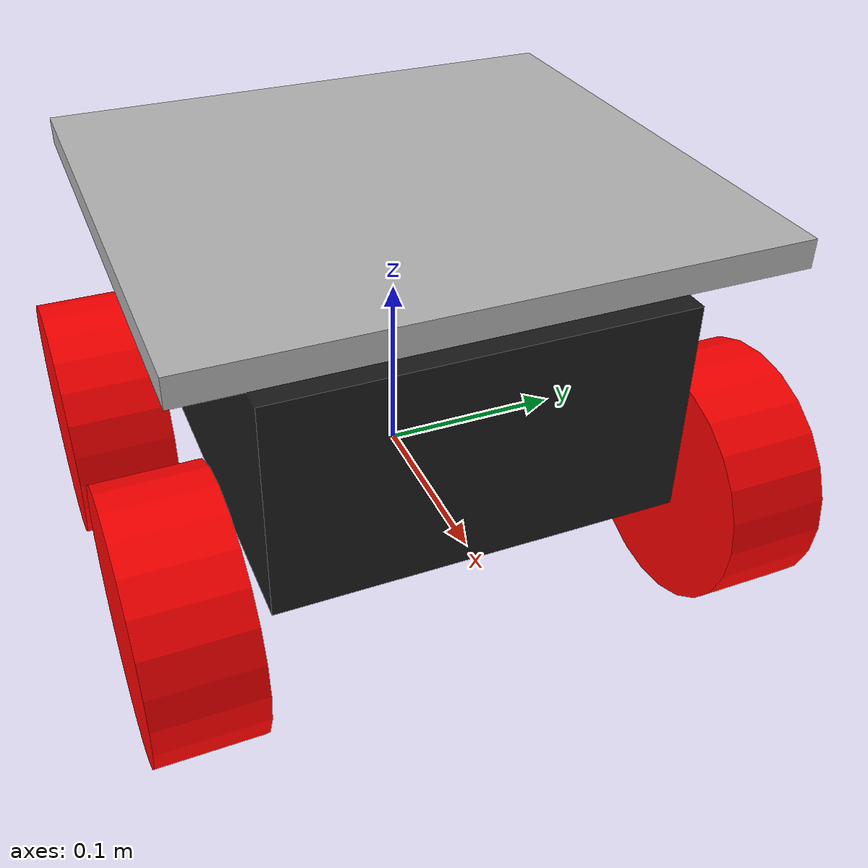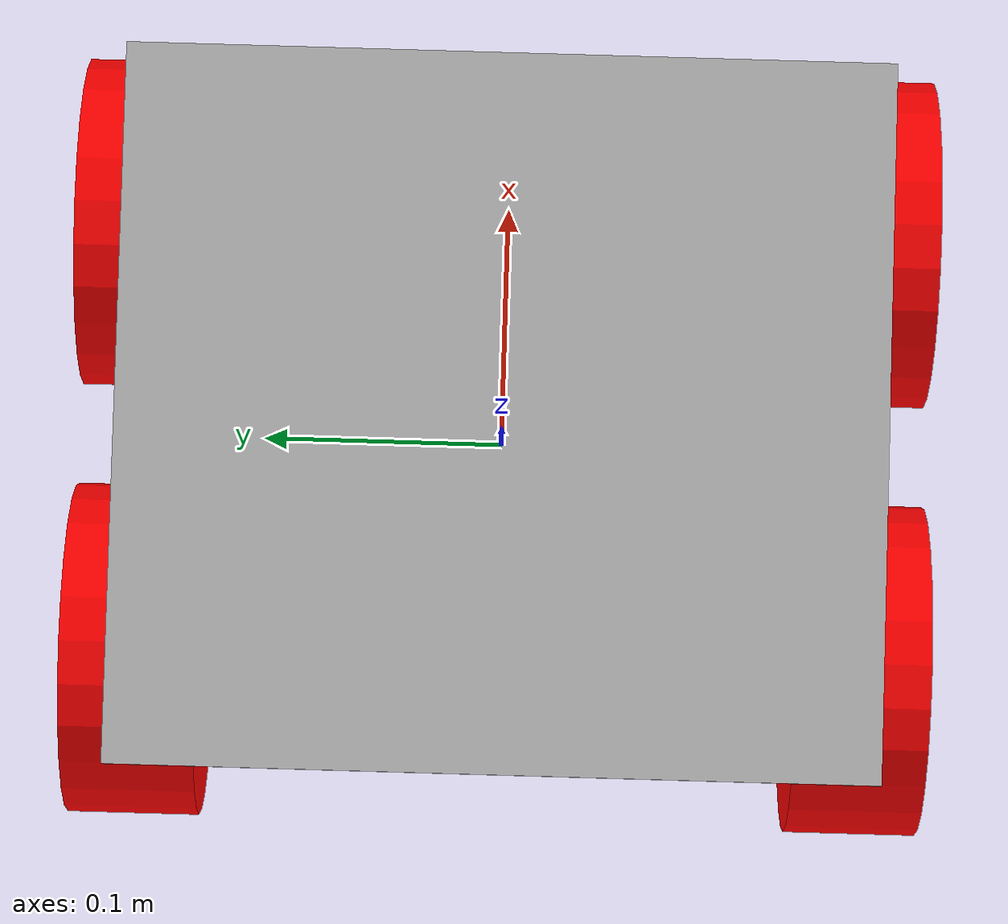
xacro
<?xml version="1.0"?>
<robot xmlns:xacro="http://www.ros.org/wiki/xacro">

  <!-- Châssis Wifibot Lab V4 -->
  <xacro:property name="base_length" value="0.32"/>
  <xacro:property name="base_width" value="0.37"/>
  <xacro:property name="base_height" value="0.15"/>
  <xacro:property name="wheel_radius" value="0.069"/>
  <xacro:property name="wheel_width" value="0.055"/>

  <link name="base_footprint"/>

  <joint name="base_footprint_joint" type="fixed">
    <parent link="base_footprint"/>
    <child link="base_link"/>
    <origin xyz="0 0 0.069" rpy="0 0 0"/>
  </joint>

  <link name="base_link">
    <visual>
      <geometry><box size="0.24 0.22 0.12"/></geometry>
      <material name="wifibot_dark_gray"><color rgba="0.10 0.10 0.10 1.0"/></material>
    </visual>
    <collision><geometry><box size="0.24 0.22 0.12"/></geometry></collision>
    <inertial>
      <mass value="3.8"/>
      <origin xyz="0 0 0" rpy="0 0 0"/>
      <inertia ixx="0.0505" ixy="0" ixz="0" iyy="0.0394" iyz="0" izz="0.0757"/>
    </inertial>
  </link>

  <link name="top_plate_link">
    <visual>
      <geometry><box size="0.28 0.30 0.015"/></geometry>
      <material name="wifibot_silver"><color rgba="0.70 0.70 0.70 1.0"/></material>
    </visual>
    <collision><geometry><box size="0.28 0.30 0.015"/></geometry></collision>
    <inertial>
      <mass value="0.3"/>
      <origin xyz="0 0 0" rpy="0 0 0"/>
      <inertia ixx="0.003" ixy="0" ixz="0" iyy="0.003" iyz="0" izz="0.004"/>
    </inertial>
  </link>

  <joint name="top_plate_joint" type="fixed">
    <parent link="base_link"/>
    <child link="top_plate_link"/>
    <origin xyz="0 0 0.09" rpy="0 0 0"/>
</joint>

  <xacro:macro name="wheel" params="prefix x y">
    <link name="${prefix}_wheel_link">
      <visual>
        <origin xyz="0 0 0" rpy="1.57079632679 0 0"/>
        <geometry><cylinder radius="${wheel_radius}" length="${wheel_width}"/></geometry>
        <material name="wifibot_black"><color rgba="1 0 0 1"/></material>
      </visual>
      <collision>
        <origin xyz="0 0 0" rpy="1.57079632679 0 0"/>
        <geometry><cylinder radius="${wheel_radius}" length="${wheel_width}"/></geometry>
      </collision>
      <inertial>
        <mass value="0.25"/>
        <origin xyz="0 0 0" rpy="0 0 0"/>
        <inertia ixx="0.00037" ixy="0" ixz="0" iyy="0.00070" iyz="0" izz="0.00037"/>
      </inertial>
    </link>
    <joint name="${prefix}_wheel_joint" type="continuous">
      <parent link="base_link"/>
      <child link="${prefix}_wheel_link"/>
      <origin xyz="${x} ${y} ${-wheel_radius}"
        rpy="0 0 0"/>
      <axis xyz="0 1 0"/>
    </joint>
  </xacro:macro>

<xacro:wheel prefix="front_left"
             x="0.09"
             y="0.15"/>

<xacro:wheel prefix="rear_left"
             x="-0.09"
             y="0.15"/>

<xacro:wheel prefix="front_right"
             x="0.09"
             y="-0.15"/>

<xacro:wheel prefix="rear_right"
             x="-0.09"
             y="-0.15"/>

  <gazebo reference="front_left_wheel_link"><mu1>1.0</mu1><mu2>1.0</mu2></gazebo>
  <gazebo reference="rear_left_wheel_link"><mu1>1.0</mu1><mu2>1.0</mu2></gazebo>
  <gazebo reference="front_right_wheel_link"><mu1>1.0</mu1><mu2>1.0</mu2></gazebo>
  <gazebo reference="rear_right_wheel_link"><mu1>1.0</mu1><mu2>1.0</mu2></gazebo>

  <gazebo>
  <plugin name="wifibot_four_wheel_diff_drive"
          filename="libgazebo_ros_diff_drive.so">

    <ros>
      <namespace>/</namespace>
    </ros>

    <update_rate>50</update_rate>

    <!-- Deux paires de roues -->
    <num_wheel_pairs>2</num_wheel_pairs>

    <!-- Première paire : roues avant, Deuxième paire : roues arrière -->
    <left_joint>front_left_wheel_joint</left_joint>
    <left_joint>rear_left_wheel_joint</left_joint>

    <right_joint>front_right_wheel_joint</right_joint>
    <right_joint>rear_right_wheel_joint</right_joint>

    <!-- Chaque paire de roues doit correspondre à un paramètre -->
    <wheel_separation>0.30</wheel_separation>
    <wheel_separation>0.30</wheel_separation>

    <wheel_diameter>0.138</wheel_diameter>
    <wheel_diameter>0.138</wheel_diameter>

    <max_wheel_torque>20.0</max_wheel_torque>
    <max_wheel_acceleration>2.0</max_wheel_acceleration>

    <command_topic>cmd_vel</command_topic>
    <odometry_topic>odom</odometry_topic>
    <odometry_frame>odom</odometry_frame>
    <robot_base_frame>base_footprint</robot_base_frame>

    <publish_odom>true</publish_odom>
    <publish_odom_tf>true</publish_odom_tf>
    <publish_wheel_tf>true</publish_wheel_tf>

  </plugin>
</gazebo>

</robot>
